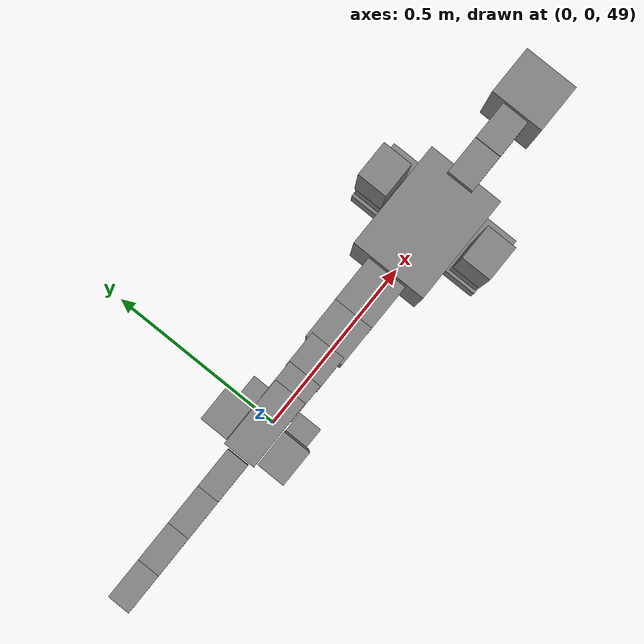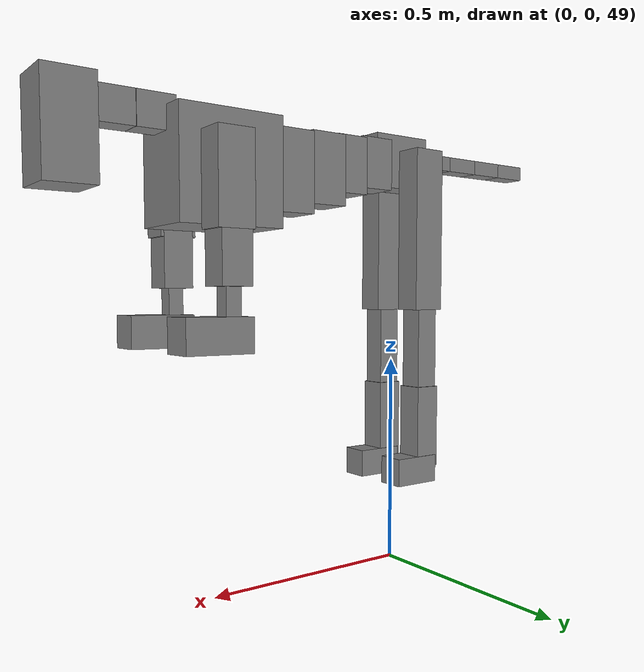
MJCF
<mujoco model="dog">

    <default>
        <joint armature="0.02" stiffness="1" damping="0.2" limited="true"/>
        <geom condim="3" friction="1 0.05 0.05" margin="0.01"/>
        <motor ctrllimited="true" ctrlrange="-1.0 1.0" forcelimited="true" gear="50"/>
    </default>

    <compiler inertiafromgeom="true" angle="radian"/>

    <option timestep="0.016" iterations="50" tolerance="1e-10" solver="Newton" jacobian="dense" cone="pyramidal"/>

    <size nconmax="20000" njmax="60000" nstack="5000000"/>
    <visual>
        <map force="0.1" zfar="30"/>
        <rgba haze="0.15 0.25 0.35 1"/>
        <quality shadowsize="2048"/>
        <global offwidth="800" offheight="800"/>
    </visual>

    <asset>
        <texture type="skybox" builtin="gradient" rgb1="0.3 0.5 0.7" rgb2="0 0 0" width="512" height="512"/>
        <texture name="texplane" type="2d" builtin="checker" rgb1=".2 .3 .4" rgb2=".1 0.15 0.2" width="512" height="512"
                 mark="cross" markrgb=".8 .8 .8"/>
        <texture name="texgeom" type="cube" builtin="flat" mark="cross" width="127" height="1278" rgb1="0.8 0.6 0.4"
                 rgb2="0.8 0.6 0.4" markrgb="1 1 1" random="0.01"/>

        <material name="matplane" reflectance="0.3" texture="texplane" texrepeat="1 1" texuniform="true"/>
        <material name="matgeom" texture="texgeom" texuniform="true" rgba="0.8 0.6 .4 1"/>
    </asset>

    <worldbody>
        <geom name="floor" pos="0 0 0" size="0 0 .25" type="plane" material="matplane" condim="3"/>

        <light directional="false" diffuse=".2 .2 .2" specular="0 0 0" pos="0 0 5" dir="0 0 -1" castshadow="false"/>
        <light mode="targetbodycom" target="torso" directional="false" diffuse=".8 .8 .8" specular="0.3 0.3 0.3"
               pos="0 0 4.0" dir="0 0 -1"/>

        <body name="root" pos="0 0 50">
            <freejoint name="root_1"/>
            <geom type="box" pos="0 0 -0.02" size="0.0774  0.0358  0.063" density="2030"/>

            <body name="spine1" pos="0.054 0 0">
                <joint name="spine1_y" axis="0 1 0" range="0 0.7" limited="true"/>
                <geom type="box" pos="0.02375 0 -0.03" size="0.04375  0.0375  0.05985" density="2030"/>

                <body name="spine2" pos="0.0612 0 0">
                    <joint name="spine2_y" axis="0 1 0" range="-0.15 0.15" limited="true"/>
                    <geom type="box" pos="0.03555  0  -0.04" size="0.04055  0.039  0.06615" density="2030"/>

                    <body name="spine3" pos="0.0730 0 0">
                        <joint name="spine3_y" axis="0 1 0" range="-0.15 0.15" limited="true"/>
                        <geom type="box" pos="0.03555  0  -0.057" size="0.04555  0.0445  0.081" density="2030"/>

                        <body name="spine4" pos="0.0780 0 0">
                            <joint name="spine4_y" axis="0 1 0" range="-0.15 0.15" limited="true"/>
                            <geom type="box" pos="0.05265  0  -0.07" size="0.05265  0.045  0.09135" density="2030"/>

                            <body name="torso" pos="0.1082 0 0">
                                <joint name="torso_y" axis="0 1 0" range="-0.15 0.15" limited="true"/>
                                <geom type="box" pos="0.11925  0  -0.085" size="0.11925  0.085  0.11745"
                                      density="2030"/>

                                <body name="neck1" pos="0.2160  0   0.0180">
                                    <joint name="neck1_y" axis="0 1 0" range="-1.2  -1" limited="true"/>
                                    <geom type="box" pos="0.0423  0  0" size="0.0423  0.03  0.036" density="2325"/>

                                    <body name="neck2" pos="0.0853  0  0">
                                        <joint name="neck2_y" axis="0 1 0" range="0.1  0" limited="true"/>
                                        <geom type="box" pos="0.0423  0  0" size="0.0423  0.03  0.036" density="2325"/>

                                        <body name="head" pos="0.0853  0  0">
                                            <joint name="head_y" axis="0 1 0" range="-0.3  -0.2" limited="true"/>
                                            <geom type="box" pos="0.0531  0  -0.055" size="0.0531  0.06  0.1044"
                                                  density="4030"/>

                                        </body>
                                    </body>
                                </body>

                                <body name="front_shoulder" pos="0.156  0   -0.0480">
                                    <joint name="front_shoulder_y" axis="0 1 0" range="-1 1.5" limited="true"/>
                                    <geom type="box" pos="0 0.13 -0.0704" size="0.0406  0.0347  0.0970" density="1158"/>
                                    <geom type="box" pos="0 -0.13 -0.0704" size="0.0406  0.0347  0.0970"
                                          density="1158"/>

                                    <body name="front_elbow" pos="0  0  -0.1408">
                                        <joint name="front_elbow_y" axis="0 1 0" range="-2 0" limited="true"/>
                                        <geom type="box" pos="0 0.13 -0.0688" size="0.0339  0.0347  0.0688"
                                              density="1081"/>
                                        <geom type="box" pos="0 -0.13 -0.0688" size="0.0339  0.0347  0.0688"
                                              density="1081"/>

                                        <body name="front_wrist" pos="0  0  -0.1377">
                                            <joint name="front_wrist_y" axis="0 1 0" range="-0.2 0" limited="true"/>
                                            <geom type="box" pos="0 0.13 -0.0369" size="0.0170  0.0189  0.0500"
                                                  density="1664"/>
                                            <geom type="box" pos="0 -0.13 -0.0369" size="0.0170  0.0189  0.0500"
                                                  density="1664"/>

                                            <body name="front_finger_end" pos="0  0  -0.0737">
                                                <joint name="front_finger_y" axis="0 1 0" range="-0.4 1"
                                                       limited="true"/>
                                                <geom type="box" pos="0.0402  0.13  -0.0213"
                                                      size="0.0737  0.0402  0.0363" density="1515"/>
                                                <geom type="box" pos="0.0402  -0.13  -0.0213"
                                                      size="0.0737  0.0402  0.0363" density="1515"/>

                                            </body>

                                        </body>
                                    </body>
                                </body>

                            </body>
                        </body>
                    </body>
                </body>
            </body>

            <body name="back_hip" pos="-0.03 0 -0.018">
                <joint name="back_hip_y" axis="0 1 0" range="-1.5 0.3" limited="true"/>
                <geom type="box" pos="0 0.07 -0.1674" size="0.0405  0.0318  0.1902" density="1154"/>
                <geom type="box" pos="0 -0.07 -0.1674" size="0.0405  0.0318  0.1902" density="1154"/>

                <body name="back_knee" pos="0  0  -0.3348">
                    <joint name="back_knee_y" axis="0 1 0" range="0 2.8" limited="true"/>
                    <geom type="box" pos="0 0.07 -0.1101" size="0.0276  0.0272  0.1257" density="1227"/>
                    <geom type="box" pos="0 -0.07 -0.1101" size="0.0276  0.0272  0.1257" density="1227"/>

                    <body name="back_ankle" pos="0  0  -0.2202">
                        <joint name="back_ankle_y" axis="0 1 0" range="-2.2 0" limited="true"/>
                        <geom type="box" pos="0 0.07 -0.0863" size="0.0311  0.0311  0.0975" density="1284"/>
                        <geom type="box" pos="0 -0.07 -0.0863" size="0.0311  0.0311  0.0975" density="1284"/>

                        <body name="back_toe_end" pos="0  0  -0.1725">
                            <joint name="back_toe_y" axis="0 1 0" range="-0.4 1" limited="true"/>
                            <geom type="box" pos="0.0319  0.07  -0.0176" size="0.0585  0.0319  0.0326" density="1515"/>
                            <geom type="box" pos="0.0319  -0.07  -0.0176" size="0.0585  0.0319  0.0326" density="1515"/>

                        </body>
                    </body>
                </body>
            </body>

            <body name="tail1" pos="-0.074 0 -0.006">
                <joint name="tail1_y" axis="0 1 0" range="-0.2 0.2" limited="true"/>
                <geom type="box" pos="-0.0536  0  0" size="0.045  0.025  0.0175" density="1587"/>

                <body name="tail2" pos="-0.09 0 0">
                    <joint name="tail2_y" axis="0 1 0" range="-0.2 0.2" limited="true"/>
                    <geom type="box" pos="-0.0536  0  0" size="0.045  0.025  0.0175" density="1587"/>

                    <body name="tail3" pos="-0.09 0 0">
                        <joint name="tail3_y" axis="0 1 0" range="-0.2 0.2" limited="true"/>
                        <geom type="box" pos="-0.0536  0  0" size="0.045  0.025  0.0175" density="1587"/>

                        <body name="tail4" pos="-0.09 0 0">
                            <joint name="tail4_y" axis="0 1 0" range="-0.2 0.2" limited="true"/>
                            <geom type="box" pos="-0.0536  0  0" size="0.045  0.025  0.0175" density="1587"/>

                        </body>
                    </body>
                </body>
            </body>
        </body>
    </worldbody>

    <actuator>
        <motor joint="spine1_y" forcerange="-150 150     "/>
        <motor joint="spine2_y" forcerange="-150 150     "/>
        <motor joint="spine3_y" forcerange="-150 150     "/>
        <motor joint="spine4_y" forcerange="-150 150     "/>
        <motor joint="torso_y" forcerange="-150 150     "/>
        <motor joint="neck1_y" forcerange="-100 100       "/>
        <motor joint="neck2_y" forcerange="-100 100       "/>
        <motor joint="head_y" forcerange="-150 150       "/>
        <motor joint="front_shoulder_y" forcerange="-181.28 150.25"/>
        <motor joint="front_elbow_y" forcerange="-156.65 195.73"/>
        <motor joint="front_wrist_y" forcerange="-89.41 61.60"/>
        <motor joint="front_finger_y" forcerange="-94.58 79.77"/>
        <motor joint="back_hip_y" forcerange="-298.25 325.36"/>
        <motor joint="back_knee_y" forcerange="-311.83 284.50"/>
        <motor joint="back_angle_y" forcerange="-215.56 182.69"/>
        <motor joint="back_toe_y" forcerange="-90.14 84.91"/>
        <motor joint="tail1_y" forcerange="-50 50     "/>
        <motor joint="tail2_y" forcerange="-50 50     "/>
        <motor joint="tail3_y" forcerange="-50 50     "/>
        <motor joint="tail4_y" forcerange="-50 50     "/>
    </actuator>
</mujoco>
